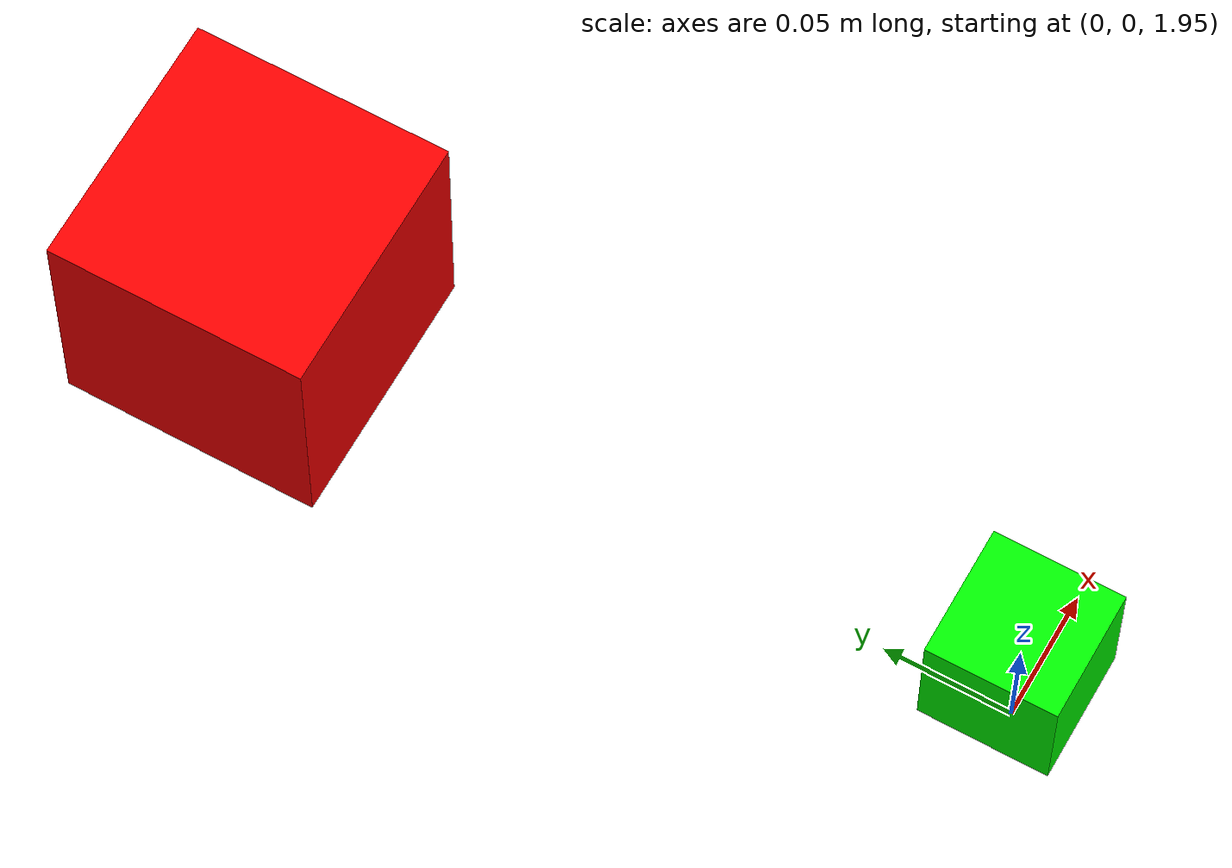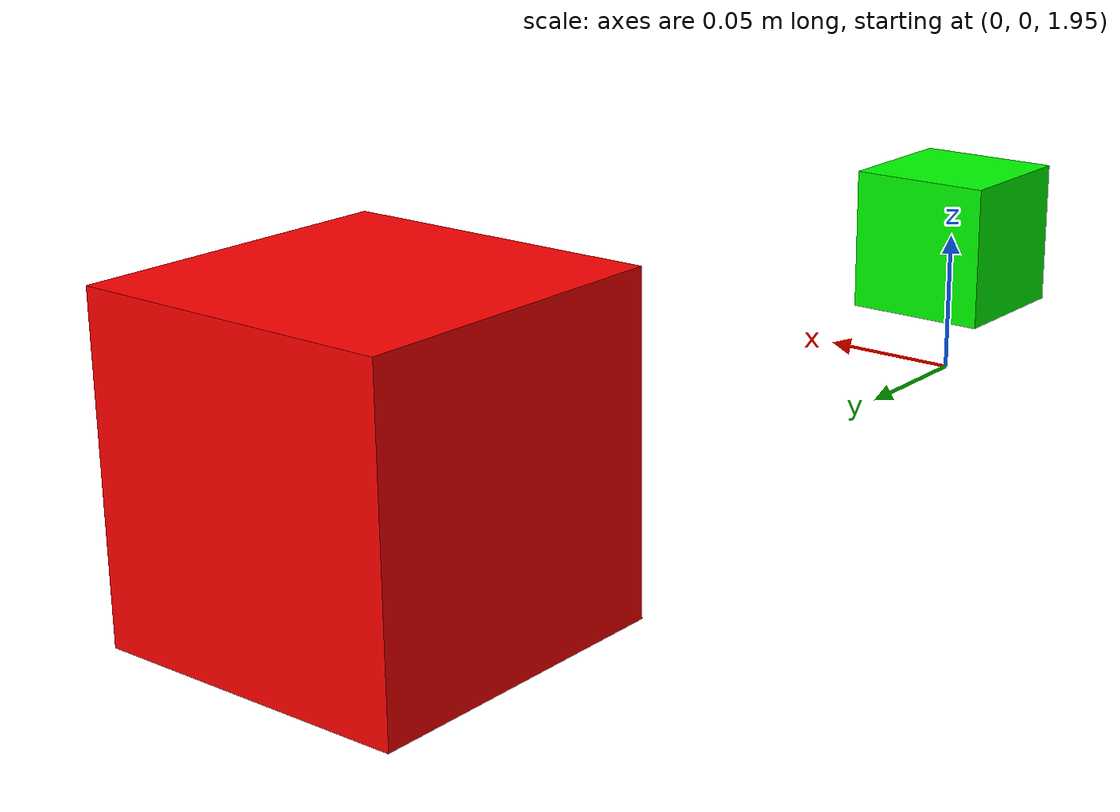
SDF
<?xml version="1.0" ?>
<sdf version="1.8">
  <world name="2_box100">

    <physics name="1ms" type="ignored">
      <max_step_size>0.001</max_step_size>
      <real_time_factor>1.0</real_time_factor>
      <real_time_update_rate>1000</real_time_update_rate>
    </physics>

    <plugin
      filename="ignition-gazebo-physics-system"
      name="ignition::gazebo::systems::Physics">
    </plugin>

    <plugin
      filename="ignition-gazebo-user-commands-system"
      name="ignition::gazebo::systems::UserCommands">
    </plugin>

    <plugin
      filename="ignition-gazebo-scene-broadcaster-system"
      name="ignition::gazebo::systems::SceneBroadcaster">
    </plugin>

    <!-- A global light source -->
    <light type="directional" name="sun">
      <cast_shadows>true</cast_shadows>
      <pose>0 0 10 0 0 0</pose>
      <diffuse>0.8 0.8 0.8 1</diffuse>
      <specular>0.2 0.2 0.2 1</specular>
      <attenuation>
        <range>1000</range>
        <constant>0.9</constant>
        <linear>0.01</linear>
        <quadratic>0.001</quadratic>
      </attenuation>
      <direction>-0.5 0.1 -0.9</direction>
    </light>

    <model name="ground_plane">
      <static>true</static>
      <link name="link">
        <collision name="collision">
          <geometry>
            <plane>
              <normal>0 0 1</normal>
              <size>100 100</size>
            </plane>
          </geometry>
        </collision>
        <visual name="visual">
          <geometry>
            <plane>
              <normal>0 0 1</normal>
              <size>100 100</size>
            </plane>
          </geometry>
          <material>
            <ambient>0.8 0.8 0.8 1</ambient>
            <diffuse>0.8 0.8 0.8 1</diffuse>
            <specular>0.1 0.1 0.1 1</specular>
          </material>
        </visual>
      </link>
    </model>

    <include>
      <uri>model://box50</uri>
      <pose>0 0.0 2.0 0 0 0</pose>
    </include>

    <include>
      <name>box100_2</name>
      <uri>model://red_box100</uri>
      <pose>0 0.3 2.0 0 0 0</pose>
    </include>

  </world>
</sdf>

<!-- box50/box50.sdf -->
<sdf version="1.8">
  <model name="box50">
    <link name="link">
      <pose>0 0 0.0 0 0 0</pose>
      <inertial>
        <mass>1.0</mass>
        <inertia>
          <ixx>0.27</ixx>
          <ixy>0</ixy>
          <ixz>0</ixz>
          <iyy>0.27</iyy>
          <iyz>0</iyz>
          <izz>0.27</izz>
        </inertia>
      </inertial>
      <enable_wind>false</enable_wind>

      <collision name="collision">
        <geometry>
          <box>
            <size>0.05 0.05 0.05</size>
          </box>
        </geometry>
        <surface>
          <contact>
            <collide_without_contact>true</collide_without_contact>
          </contact>
          <friction>
            <ode>
              <mu>0.6</mu>
              <mu2>0.6</mu2>
            </ode>
          </friction>
        </surface>
      </collision>

      <visual name="visual">
        <geometry>
          <box>
            <size>0.05 0.05 0.05</size>
          </box>
        </geometry>
        <material>
          <ambient>0 1 0 1</ambient>
          <diffuse>0 1 0 1</diffuse>
          <specular>0.1 0.1 0.1 1</specular>
          <emissive>0 0 0 1</emissive>
        </material>
      </visual>

    </link>
  </model>
</sdf>

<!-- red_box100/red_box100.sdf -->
<sdf version="1.8">
  <model name="box100">
    <link name="link">
      <pose>0 0 0.0 0 0 0</pose>
      <inertial>
        <mass>1.0</mass>
        <inertia>
          <ixx>0.27</ixx>
          <ixy>0</ixy>
          <ixz>0</ixz>
          <iyy>0.27</iyy>
          <iyz>0</iyz>
          <izz>0.27</izz>
        </inertia>
      </inertial>
      <enable_wind>false</enable_wind>

      <collision name="collision">
        <geometry>
          <box>
            <size>0.1 0.1 0.1</size>
          </box>
        </geometry>
        <surface>
          <contact>
            <collide_without_contact>true</collide_without_contact>
          </contact>
          <friction>
            <ode>
              <mu>0.6</mu>
              <mu2>0.6</mu2>
            </ode>
          </friction>
        </surface>
      </collision>

      <visual name="visual">
        <geometry>
          <box>
            <size>0.1 0.1 0.1</size>
          </box>
        </geometry>
        <material>
          <ambient>1 0 0 1</ambient>
          <diffuse>1 0 0 1</diffuse>
          <specular>0.1 0.1 0.1 1</specular>
          <emissive>0 0 0 1</emissive>
        </material>
      </visual>

    </link>
  </model>
</sdf>
